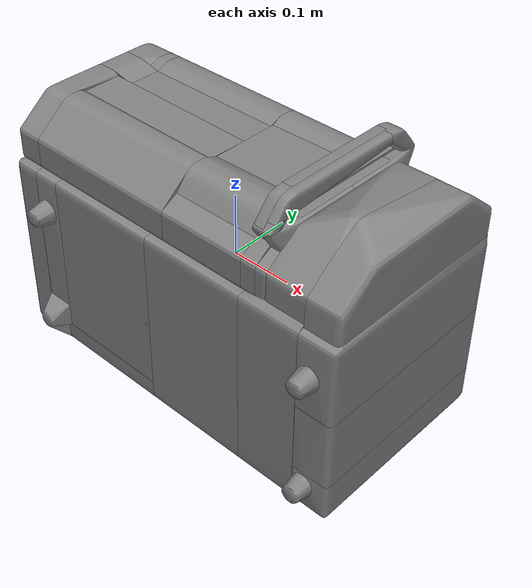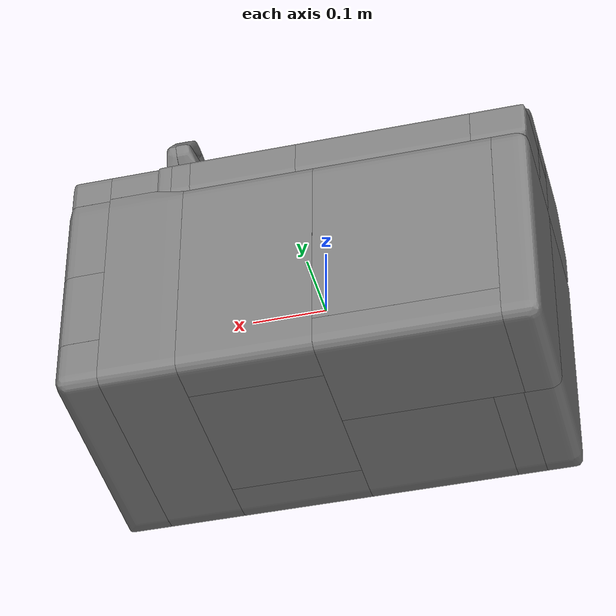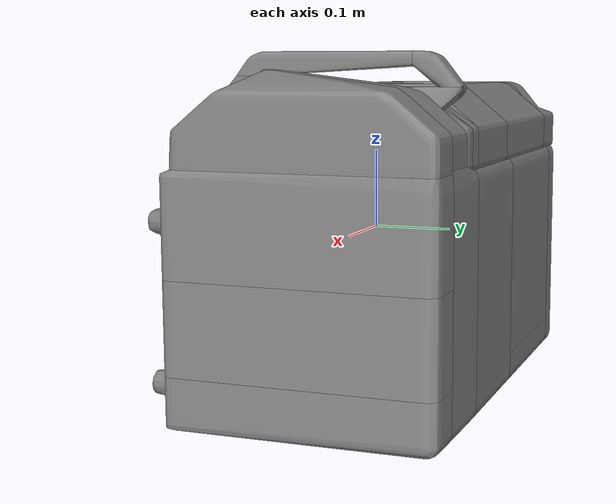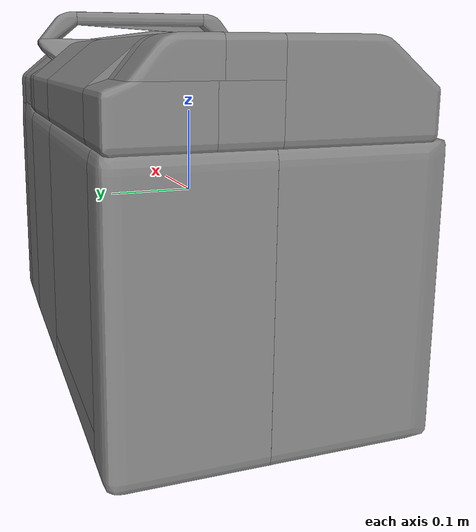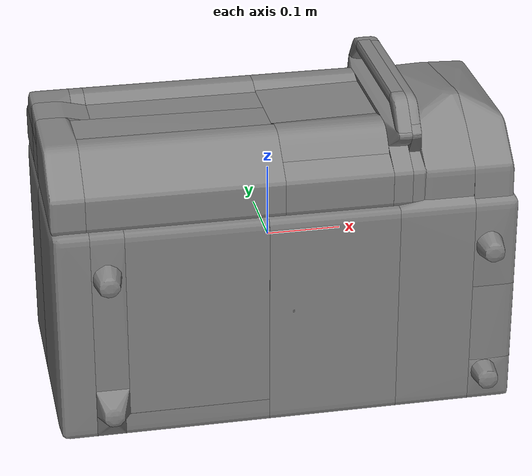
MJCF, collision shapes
<mujoco model="Microwave_1">
  <compiler autolimits="true" boundmass="0.01" angle="radian"/>
  <default>
    <default class="/">
      <default class="__VISUAL_MJT__">
        <geom contype="0" conaffinity="0" group="0"/>
      </default>
      <default class="__STRUCTURAL_MJT__">
        <geom contype="8" conaffinity="7" group="4" friction="0.90000000000000002 0.90000000000000002 0.001" solref="0.025000000000000001 1" solimp="0.998 0.998 0.001"/>
      </default>
      <default class="__DYNAMIC_MJT__">
        <geom contype="1" conaffinity="15" group="4" friction="0.90000000000000002 0.90000000000000002 0.001" solref="0.025000000000000001 1" solimp="0.998 0.998 0.001"/>
      </default>
    </default>
  </default>
  <asset>
    <texture name="Microwave_Window1_Off_Mat" type="2d" file="Microwave_Window_AlbedoTransparency.png"/>
    <material name="material_Microwave_Window1_Off_Mat" class="/" texture="Microwave_Window1_Off_Mat" specular="0.5" shininess="0.5" rgba="1 1 1 1"/>
    <material name="material_Microwave_Plate1_Mat" class="/" specular="0.5" shininess="0.5" rgba="0.30303849999999999 0.34723480000000001 0.43382349999999997 1"/>
    <texture name="Microwave_Metal_Mat" type="2d" file="BrushedIron_AlbedoTransparency.png"/>
    <material name="material_Microwave_Metal_Mat" class="/" texture="Microwave_Metal_Mat" specular="0.5" shininess="0.5" rgba="1 1 1 1"/>
    <texture name="Microwave_Primary1_Mat" type="2d" file="HammeredMetal_AlbedoTransparency.png"/>
    <material name="material_Microwave_Primary1_Mat" class="/" texture="Microwave_Primary1_Mat" specular="0.5" shininess="0.5" rgba="0.56571709999999997 0.56617649999999997 0.55785039999999997 1"/>
    <mesh name="Microwave_1_doormesh_1_0" class="/" file="Microwave_1_doormesh_1/Microwave_1_doormesh_1_0.obj" scale="1 1 1"/>
    <mesh name="Microwave_1_doormesh_1_1" class="/" file="Microwave_1_doormesh_1/Microwave_1_doormesh_1_1.obj" scale="1 1 1"/>
    <mesh name="Microwave_1_doormesh_1_2" class="/" file="Microwave_1_doormesh_1/Microwave_1_doormesh_1_2.obj" scale="1 1 1"/>
    <mesh name="Microwave_1_doormesh_1_3" class="/" file="Microwave_1_doormesh_1/Microwave_1_doormesh_1_3.obj" scale="1 1 1"/>
    <mesh name="Microwave_1_doormesh_1_4" class="/" file="Microwave_1_doormesh_1/Microwave_1_doormesh_1_4.obj" scale="1 1 1"/>
    <mesh name="Microwave_1_doormesh_1_5" class="/" file="Microwave_1_doormesh_1/Microwave_1_doormesh_1_5.obj" scale="1 1 1"/>
    <mesh name="Microwave_1_doormesh_1_6" class="/" file="Microwave_1_doormesh_1/Microwave_1_doormesh_1_6.obj" scale="1 1 1"/>
    <mesh name="Microwave_1_doormesh_1_7" class="/" file="Microwave_1_doormesh_1/Microwave_1_doormesh_1_7.obj" scale="1 1 1"/>
    <mesh name="Microwave_1_doormesh_1_collision_collision_18" class="/" file="Microwave_1_doormesh_1/Microwave_1_doormesh_1_collision_collision_18.obj"/>
    <mesh name="Microwave_1_doormesh_1_collision_collision_24" class="/" file="Microwave_1_doormesh_1/Microwave_1_doormesh_1_collision_collision_24.obj"/>
    <mesh name="Microwave_1_doormesh_1_collision_collision_25" class="/" file="Microwave_1_doormesh_1/Microwave_1_doormesh_1_collision_collision_25.obj"/>
    <mesh name="Microwave_1_doormesh_1_collision_collision_19" class="/" file="Microwave_1_doormesh_1/Microwave_1_doormesh_1_collision_collision_19.obj"/>
    <mesh name="Microwave_1_doormesh_1_collision_collision_27" class="/" file="Microwave_1_doormesh_1/Microwave_1_doormesh_1_collision_collision_27.obj"/>
    <mesh name="Microwave_1_doormesh_1_collision_collision_26" class="/" file="Microwave_1_doormesh_1/Microwave_1_doormesh_1_collision_collision_26.obj"/>
    <mesh name="Microwave_1_doormesh_1_collision_collision_22" class="/" file="Microwave_1_doormesh_1/Microwave_1_doormesh_1_collision_collision_22.obj"/>
    <mesh name="Microwave_1_doormesh_1_collision_collision_23" class="/" file="Microwave_1_doormesh_1/Microwave_1_doormesh_1_collision_collision_23.obj"/>
    <mesh name="Microwave_1_doormesh_1_collision_collision_21" class="/" file="Microwave_1_doormesh_1/Microwave_1_doormesh_1_collision_collision_21.obj"/>
    <mesh name="Microwave_1_doormesh_1_collision_collision_20" class="/" file="Microwave_1_doormesh_1/Microwave_1_doormesh_1_collision_collision_20.obj"/>
    <mesh name="Microwave_1_doormesh_1_collision_collision_6" class="/" file="Microwave_1_doormesh_1/Microwave_1_doormesh_1_collision_collision_6.obj"/>
    <mesh name="Microwave_1_doormesh_1_collision_collision_7" class="/" file="Microwave_1_doormesh_1/Microwave_1_doormesh_1_collision_collision_7.obj"/>
    <mesh name="Microwave_1_doormesh_1_collision_collision_5" class="/" file="Microwave_1_doormesh_1/Microwave_1_doormesh_1_collision_collision_5.obj"/>
    <mesh name="Microwave_1_doormesh_1_collision_collision_4" class="/" file="Microwave_1_doormesh_1/Microwave_1_doormesh_1_collision_collision_4.obj"/>
    <mesh name="Microwave_1_doormesh_1_collision_collision_0" class="/" file="Microwave_1_doormesh_1/Microwave_1_doormesh_1_collision_collision_0.obj"/>
    <mesh name="Microwave_1_doormesh_1_collision_collision_1" class="/" file="Microwave_1_doormesh_1/Microwave_1_doormesh_1_collision_collision_1.obj"/>
    <mesh name="Microwave_1_doormesh_1_collision_collision_3" class="/" file="Microwave_1_doormesh_1/Microwave_1_doormesh_1_collision_collision_3.obj"/>
    <mesh name="Microwave_1_doormesh_1_collision_collision_2" class="/" file="Microwave_1_doormesh_1/Microwave_1_doormesh_1_collision_collision_2.obj"/>
    <mesh name="Microwave_1_doormesh_1_collision_collision_9" class="/" file="Microwave_1_doormesh_1/Microwave_1_doormesh_1_collision_collision_9.obj"/>
    <mesh name="Microwave_1_doormesh_1_collision_collision_8" class="/" file="Microwave_1_doormesh_1/Microwave_1_doormesh_1_collision_collision_8.obj"/>
    <mesh name="Microwave_1_doormesh_1_collision_collision_11" class="/" file="Microwave_1_doormesh_1/Microwave_1_doormesh_1_collision_collision_11.obj"/>
    <mesh name="Microwave_1_doormesh_1_collision_collision_10" class="/" file="Microwave_1_doormesh_1/Microwave_1_doormesh_1_collision_collision_10.obj"/>
    <mesh name="Microwave_1_doormesh_1_collision_collision_12" class="/" file="Microwave_1_doormesh_1/Microwave_1_doormesh_1_collision_collision_12.obj"/>
    <mesh name="Microwave_1_doormesh_1_collision_collision_13" class="/" file="Microwave_1_doormesh_1/Microwave_1_doormesh_1_collision_collision_13.obj"/>
    <mesh name="Microwave_1_doormesh_1_collision_collision_17" class="/" file="Microwave_1_doormesh_1/Microwave_1_doormesh_1_collision_collision_17.obj"/>
    <mesh name="Microwave_1_doormesh_1_collision_collision_16" class="/" file="Microwave_1_doormesh_1/Microwave_1_doormesh_1_collision_collision_16.obj"/>
    <mesh name="Microwave_1_doormesh_1_collision_collision_14" class="/" file="Microwave_1_doormesh_1/Microwave_1_doormesh_1_collision_collision_14.obj"/>
    <mesh name="Microwave_1_doormesh_1_collision_collision_15" class="/" file="Microwave_1_doormesh_1/Microwave_1_doormesh_1_collision_collision_15.obj"/>
    <material name="material_Microwave_Readout2B_Off_Mat" class="/" specular="0.5" shininess="0.5" rgba="0 0 0 1"/>
    <texture name="Microwave_Decal_Mat" type="2d" file="Microwave_Decal_AlbedoTransparency.png"/>
    <material name="material_Microwave_Decal_Mat" class="/" texture="Microwave_Decal_Mat" specular="0.5" shininess="0.5" rgba="1 1 1 1"/>
    <material name="material_Microwave_Interior2_Mat" class="/" specular="0.5" shininess="0.5" rgba="0.60294119999999995 0.60294119999999995 0.60294119999999995 1"/>
    <material name="material_Microwave_Secondary1_Mat" class="/" specular="0.5" shininess="0.5" rgba="0.36029410000000001 0.36029410000000001 0.36029410000000001 1"/>
    <mesh name="Microwave_1_bodymesh_0_0" class="/" file="Microwave_1_bodymesh_0/Microwave_1_bodymesh_0_0.obj" scale="1 1 1"/>
    <mesh name="Microwave_1_bodymesh_0_1" class="/" file="Microwave_1_bodymesh_0/Microwave_1_bodymesh_0_1.obj" scale="1 1 1"/>
    <mesh name="Microwave_1_bodymesh_0_2" class="/" file="Microwave_1_bodymesh_0/Microwave_1_bodymesh_0_2.obj" scale="1 1 1"/>
    <mesh name="Microwave_1_bodymesh_0_3" class="/" file="Microwave_1_bodymesh_0/Microwave_1_bodymesh_0_3.obj" scale="1 1 1"/>
    <mesh name="Microwave_1_bodymesh_0_4" class="/" file="Microwave_1_bodymesh_0/Microwave_1_bodymesh_0_4.obj" scale="1 1 1"/>
    <mesh name="Microwave_1_bodymesh_0_5" class="/" file="Microwave_1_bodymesh_0/Microwave_1_bodymesh_0_5.obj" scale="1 1 1"/>
    <mesh name="Microwave_1_bodymesh_0_6" class="/" file="Microwave_1_bodymesh_0/Microwave_1_bodymesh_0_6.obj" scale="1 1 1"/>
    <mesh name="Microwave_1_bodymesh_0_collision_collision_12" class="/" file="Microwave_1_bodymesh_0/Microwave_1_bodymesh_0_collision_collision_12.obj"/>
    <mesh name="Microwave_1_bodymesh_0_collision_collision_13" class="/" file="Microwave_1_bodymesh_0/Microwave_1_bodymesh_0_collision_collision_13.obj"/>
    <mesh name="Microwave_1_bodymesh_0_collision_collision_11" class="/" file="Microwave_1_bodymesh_0/Microwave_1_bodymesh_0_collision_collision_11.obj"/>
    <mesh name="Microwave_1_bodymesh_0_collision_collision_10" class="/" file="Microwave_1_bodymesh_0/Microwave_1_bodymesh_0_collision_collision_10.obj"/>
    <mesh name="Microwave_1_bodymesh_0_collision_collision_14" class="/" file="Microwave_1_bodymesh_0/Microwave_1_bodymesh_0_collision_collision_14.obj"/>
    <mesh name="Microwave_1_bodymesh_0_collision_collision_15" class="/" file="Microwave_1_bodymesh_0/Microwave_1_bodymesh_0_collision_collision_15.obj"/>
    <mesh name="Microwave_1_bodymesh_0_collision_collision_17" class="/" file="Microwave_1_bodymesh_0/Microwave_1_bodymesh_0_collision_collision_17.obj"/>
    <mesh name="Microwave_1_bodymesh_0_collision_collision_8" class="/" file="Microwave_1_bodymesh_0/Microwave_1_bodymesh_0_collision_collision_8.obj"/>
    <mesh name="Microwave_1_bodymesh_0_collision_collision_9" class="/" file="Microwave_1_bodymesh_0/Microwave_1_bodymesh_0_collision_collision_9.obj"/>
    <mesh name="Microwave_1_bodymesh_0_collision_collision_16" class="/" file="Microwave_1_bodymesh_0/Microwave_1_bodymesh_0_collision_collision_16.obj"/>
    <mesh name="Microwave_1_bodymesh_0_collision_collision_4" class="/" file="Microwave_1_bodymesh_0/Microwave_1_bodymesh_0_collision_collision_4.obj"/>
    <mesh name="Microwave_1_bodymesh_0_collision_collision_5" class="/" file="Microwave_1_bodymesh_0/Microwave_1_bodymesh_0_collision_collision_5.obj"/>
    <mesh name="Microwave_1_bodymesh_0_collision_collision_18" class="/" file="Microwave_1_bodymesh_0/Microwave_1_bodymesh_0_collision_collision_18.obj"/>
    <mesh name="Microwave_1_bodymesh_0_collision_collision_7" class="/" file="Microwave_1_bodymesh_0/Microwave_1_bodymesh_0_collision_collision_7.obj"/>
    <mesh name="Microwave_1_bodymesh_0_collision_collision_6" class="/" file="Microwave_1_bodymesh_0/Microwave_1_bodymesh_0_collision_collision_6.obj"/>
    <mesh name="Microwave_1_bodymesh_0_collision_collision_19" class="/" file="Microwave_1_bodymesh_0/Microwave_1_bodymesh_0_collision_collision_19.obj"/>
    <mesh name="Microwave_1_bodymesh_0_collision_collision_21" class="/" file="Microwave_1_bodymesh_0/Microwave_1_bodymesh_0_collision_collision_21.obj"/>
    <mesh name="Microwave_1_bodymesh_0_collision_collision_2" class="/" file="Microwave_1_bodymesh_0/Microwave_1_bodymesh_0_collision_collision_2.obj"/>
    <mesh name="Microwave_1_bodymesh_0_collision_collision_3" class="/" file="Microwave_1_bodymesh_0/Microwave_1_bodymesh_0_collision_collision_3.obj"/>
    <mesh name="Microwave_1_bodymesh_0_collision_collision_20" class="/" file="Microwave_1_bodymesh_0/Microwave_1_bodymesh_0_collision_collision_20.obj"/>
    <mesh name="Microwave_1_bodymesh_0_collision_collision_1" class="/" file="Microwave_1_bodymesh_0/Microwave_1_bodymesh_0_collision_collision_1.obj"/>
    <mesh name="Microwave_1_bodymesh_0_collision_collision_0" class="/" file="Microwave_1_bodymesh_0/Microwave_1_bodymesh_0_collision_collision_0.obj"/>
  </asset>
  <worldbody>
    <body name="Microwave_1">
      <joint name="Microwave_1_free" class="/" type="free" pos="0 0 0" axis="0 0 1" stiffness="0" range="0 0" armature="0" damping="0.10000000000000001" frictionloss="0"/>
      <body name="Microwave_1_doormesh_1" pos="-0.29202829999999996 0.028091399999999989 0.092424199999999998" quat="1 0 0 0">
        <geom name="Microwave_1_doormesh_1_0" class="__VISUAL_MJT__" type="mesh" material="material_Microwave_Window1_Off_Mat" shellinertia="false" mesh="Microwave_1_doormesh_1_0"/>
        <geom name="Microwave_1_doormesh_1_1" class="__VISUAL_MJT__" type="mesh" material="material_Microwave_Plate1_Mat" shellinertia="true" mesh="Microwave_1_doormesh_1_1"/>
        <geom name="Microwave_1_doormesh_1_2" class="__VISUAL_MJT__" type="mesh" material="material_Microwave_Plate1_Mat" shellinertia="true" mesh="Microwave_1_doormesh_1_2"/>
        <geom name="Microwave_1_doormesh_1_3" class="__VISUAL_MJT__" type="mesh" material="material_Microwave_Plate1_Mat" shellinertia="true" mesh="Microwave_1_doormesh_1_3"/>
        <geom name="Microwave_1_doormesh_1_4" class="__VISUAL_MJT__" type="mesh" material="material_Microwave_Plate1_Mat" shellinertia="true" mesh="Microwave_1_doormesh_1_4"/>
        <geom name="Microwave_1_doormesh_1_5" class="__VISUAL_MJT__" type="mesh" material="material_Microwave_Metal_Mat" shellinertia="false" mesh="Microwave_1_doormesh_1_5"/>
        <geom name="Microwave_1_doormesh_1_6" class="__VISUAL_MJT__" type="mesh" material="material_Microwave_Primary1_Mat" shellinertia="false" mesh="Microwave_1_doormesh_1_6"/>
        <geom name="Microwave_1_doormesh_1_7" class="__VISUAL_MJT__" type="mesh" material="material_Microwave_Primary1_Mat" shellinertia="false" mesh="Microwave_1_doormesh_1_7"/>
        <geom name="Microwave_1_doormesh_1_collision_collision_18" class="__DYNAMIC_MJT__" type="mesh" mesh="Microwave_1_doormesh_1_collision_collision_18"/>
        <geom name="Microwave_1_doormesh_1_collision_collision_24" class="__DYNAMIC_MJT__" type="mesh" mesh="Microwave_1_doormesh_1_collision_collision_24"/>
        <geom name="Microwave_1_doormesh_1_collision_collision_25" class="__DYNAMIC_MJT__" type="mesh" mesh="Microwave_1_doormesh_1_collision_collision_25"/>
        <geom name="Microwave_1_doormesh_1_collision_collision_19" class="__DYNAMIC_MJT__" type="mesh" mesh="Microwave_1_doormesh_1_collision_collision_19"/>
        <geom name="Microwave_1_doormesh_1_collision_collision_27" class="__DYNAMIC_MJT__" type="mesh" mesh="Microwave_1_doormesh_1_collision_collision_27"/>
        <geom name="Microwave_1_doormesh_1_collision_collision_26" class="__DYNAMIC_MJT__" type="mesh" mesh="Microwave_1_doormesh_1_collision_collision_26"/>
        <geom name="Microwave_1_doormesh_1_collision_collision_22" class="__DYNAMIC_MJT__" type="mesh" mesh="Microwave_1_doormesh_1_collision_collision_22"/>
        <geom name="Microwave_1_doormesh_1_collision_collision_23" class="__DYNAMIC_MJT__" type="mesh" mesh="Microwave_1_doormesh_1_collision_collision_23"/>
        <geom name="Microwave_1_doormesh_1_collision_collision_21" class="__DYNAMIC_MJT__" type="mesh" mesh="Microwave_1_doormesh_1_collision_collision_21"/>
        <geom name="Microwave_1_doormesh_1_collision_collision_20" class="__DYNAMIC_MJT__" type="mesh" mesh="Microwave_1_doormesh_1_collision_collision_20"/>
        <geom name="Microwave_1_doormesh_1_collision_collision_6" class="__DYNAMIC_MJT__" type="mesh" mesh="Microwave_1_doormesh_1_collision_collision_6"/>
        <geom name="Microwave_1_doormesh_1_collision_collision_7" class="__DYNAMIC_MJT__" type="mesh" mesh="Microwave_1_doormesh_1_collision_collision_7"/>
        <geom name="Microwave_1_doormesh_1_collision_collision_5" class="__DYNAMIC_MJT__" type="mesh" mesh="Microwave_1_doormesh_1_collision_collision_5"/>
        <geom name="Microwave_1_doormesh_1_collision_collision_4" class="__DYNAMIC_MJT__" type="mesh" mesh="Microwave_1_doormesh_1_collision_collision_4"/>
        <geom name="Microwave_1_doormesh_1_collision_collision_0" class="__DYNAMIC_MJT__" type="mesh" mesh="Microwave_1_doormesh_1_collision_collision_0"/>
        <geom name="Microwave_1_doormesh_1_collision_collision_1" class="__DYNAMIC_MJT__" type="mesh" mesh="Microwave_1_doormesh_1_collision_collision_1"/>
        <geom name="Microwave_1_doormesh_1_collision_collision_3" class="__DYNAMIC_MJT__" type="mesh" mesh="Microwave_1_doormesh_1_collision_collision_3"/>
        <geom name="Microwave_1_doormesh_1_collision_collision_2" class="__DYNAMIC_MJT__" type="mesh" mesh="Microwave_1_doormesh_1_collision_collision_2"/>
        <geom name="Microwave_1_doormesh_1_collision_collision_9" class="__DYNAMIC_MJT__" type="mesh" mesh="Microwave_1_doormesh_1_collision_collision_9"/>
        <geom name="Microwave_1_doormesh_1_collision_collision_8" class="__DYNAMIC_MJT__" type="mesh" mesh="Microwave_1_doormesh_1_collision_collision_8"/>
        <geom name="Microwave_1_doormesh_1_collision_collision_11" class="__DYNAMIC_MJT__" type="mesh" mesh="Microwave_1_doormesh_1_collision_collision_11"/>
        <geom name="Microwave_1_doormesh_1_collision_collision_10" class="__DYNAMIC_MJT__" type="mesh" mesh="Microwave_1_doormesh_1_collision_collision_10"/>
        <geom name="Microwave_1_doormesh_1_collision_collision_12" class="__DYNAMIC_MJT__" type="mesh" mesh="Microwave_1_doormesh_1_collision_collision_12"/>
        <geom name="Microwave_1_doormesh_1_collision_collision_13" class="__DYNAMIC_MJT__" type="mesh" mesh="Microwave_1_doormesh_1_collision_collision_13"/>
        <geom name="Microwave_1_doormesh_1_collision_collision_17" class="__DYNAMIC_MJT__" type="mesh" mesh="Microwave_1_doormesh_1_collision_collision_17"/>
        <geom name="Microwave_1_doormesh_1_collision_collision_16" class="__DYNAMIC_MJT__" type="mesh" mesh="Microwave_1_doormesh_1_collision_collision_16"/>
        <geom name="Microwave_1_doormesh_1_collision_collision_14" class="__DYNAMIC_MJT__" type="mesh" mesh="Microwave_1_doormesh_1_collision_collision_14"/>
        <geom name="Microwave_1_doormesh_1_collision_collision_15" class="__DYNAMIC_MJT__" type="mesh" mesh="Microwave_1_doormesh_1_collision_collision_15"/>
        <joint name="Microwave_1_joint" class="/" type="hinge" pos="0 0 0" axis="0 -1 0" stiffness="0" range="0 1.5700000000000001" armature="0" damping="0.10000000000000001" frictionloss="0"/>
      </body>
      <body name="Microwave_1_bodymesh_0" pos="-0.0001 -0.17676 -0.023740000000000001" quat="1 0 0 0">
        <geom name="Microwave_1_bodymesh_0_0" class="__VISUAL_MJT__" type="mesh" material="material_Microwave_Readout2B_Off_Mat" shellinertia="false" mesh="Microwave_1_bodymesh_0_0"/>
        <geom name="Microwave_1_bodymesh_0_1" class="__VISUAL_MJT__" type="mesh" material="material_Microwave_Decal_Mat" shellinertia="false" mesh="Microwave_1_bodymesh_0_1"/>
        <geom name="Microwave_1_bodymesh_0_2" class="__VISUAL_MJT__" type="mesh" material="material_Microwave_Interior2_Mat" shellinertia="false" mesh="Microwave_1_bodymesh_0_2"/>
        <geom name="Microwave_1_bodymesh_0_3" class="__VISUAL_MJT__" type="mesh" material="material_Microwave_Plate1_Mat" shellinertia="false" mesh="Microwave_1_bodymesh_0_3"/>
        <geom name="Microwave_1_bodymesh_0_4" class="__VISUAL_MJT__" type="mesh" material="material_Microwave_Metal_Mat" shellinertia="false" mesh="Microwave_1_bodymesh_0_4"/>
        <geom name="Microwave_1_bodymesh_0_5" class="__VISUAL_MJT__" type="mesh" material="material_Microwave_Secondary1_Mat" shellinertia="false" mesh="Microwave_1_bodymesh_0_5"/>
        <geom name="Microwave_1_bodymesh_0_6" class="__VISUAL_MJT__" type="mesh" material="material_Microwave_Primary1_Mat" shellinertia="false" mesh="Microwave_1_bodymesh_0_6"/>
        <geom name="Microwave_1_bodymesh_0_collision_collision_12" class="__DYNAMIC_MJT__" type="mesh" mesh="Microwave_1_bodymesh_0_collision_collision_12"/>
        <geom name="Microwave_1_bodymesh_0_collision_collision_13" class="__DYNAMIC_MJT__" type="mesh" mesh="Microwave_1_bodymesh_0_collision_collision_13"/>
        <geom name="Microwave_1_bodymesh_0_collision_collision_11" class="__DYNAMIC_MJT__" type="mesh" mesh="Microwave_1_bodymesh_0_collision_collision_11"/>
        <geom name="Microwave_1_bodymesh_0_collision_collision_10" class="__DYNAMIC_MJT__" type="mesh" mesh="Microwave_1_bodymesh_0_collision_collision_10"/>
        <geom name="Microwave_1_bodymesh_0_collision_collision_14" class="__DYNAMIC_MJT__" type="mesh" mesh="Microwave_1_bodymesh_0_collision_collision_14"/>
        <geom name="Microwave_1_bodymesh_0_collision_collision_15" class="__DYNAMIC_MJT__" type="mesh" mesh="Microwave_1_bodymesh_0_collision_collision_15"/>
        <geom name="Microwave_1_bodymesh_0_collision_collision_17" class="__DYNAMIC_MJT__" type="mesh" mesh="Microwave_1_bodymesh_0_collision_collision_17"/>
        <geom name="Microwave_1_bodymesh_0_collision_collision_8" class="__DYNAMIC_MJT__" type="mesh" mesh="Microwave_1_bodymesh_0_collision_collision_8"/>
        <geom name="Microwave_1_bodymesh_0_collision_collision_9" class="__DYNAMIC_MJT__" type="mesh" mesh="Microwave_1_bodymesh_0_collision_collision_9"/>
        <geom name="Microwave_1_bodymesh_0_collision_collision_16" class="__DYNAMIC_MJT__" type="mesh" mesh="Microwave_1_bodymesh_0_collision_collision_16"/>
        <geom name="Microwave_1_bodymesh_0_collision_collision_4" class="__DYNAMIC_MJT__" type="mesh" mesh="Microwave_1_bodymesh_0_collision_collision_4"/>
        <geom name="Microwave_1_bodymesh_0_collision_collision_5" class="__DYNAMIC_MJT__" type="mesh" mesh="Microwave_1_bodymesh_0_collision_collision_5"/>
        <geom name="Microwave_1_bodymesh_0_collision_collision_18" class="__DYNAMIC_MJT__" type="mesh" mesh="Microwave_1_bodymesh_0_collision_collision_18"/>
        <geom name="Microwave_1_bodymesh_0_collision_collision_7" class="__DYNAMIC_MJT__" type="mesh" mesh="Microwave_1_bodymesh_0_collision_collision_7"/>
        <geom name="Microwave_1_bodymesh_0_collision_collision_6" class="__DYNAMIC_MJT__" type="mesh" mesh="Microwave_1_bodymesh_0_collision_collision_6"/>
        <geom name="Microwave_1_bodymesh_0_collision_collision_19" class="__DYNAMIC_MJT__" type="mesh" mesh="Microwave_1_bodymesh_0_collision_collision_19"/>
        <geom name="Microwave_1_bodymesh_0_collision_collision_21" class="__DYNAMIC_MJT__" type="mesh" mesh="Microwave_1_bodymesh_0_collision_collision_21"/>
        <geom name="Microwave_1_bodymesh_0_collision_collision_2" class="__DYNAMIC_MJT__" type="mesh" mesh="Microwave_1_bodymesh_0_collision_collision_2"/>
        <geom name="Microwave_1_bodymesh_0_collision_collision_3" class="__DYNAMIC_MJT__" type="mesh" mesh="Microwave_1_bodymesh_0_collision_collision_3"/>
        <geom name="Microwave_1_bodymesh_0_collision_collision_20" class="__DYNAMIC_MJT__" type="mesh" mesh="Microwave_1_bodymesh_0_collision_collision_20"/>
        <geom name="Microwave_1_bodymesh_0_collision_collision_1" class="__DYNAMIC_MJT__" type="mesh" mesh="Microwave_1_bodymesh_0_collision_collision_1"/>
        <geom name="Microwave_1_bodymesh_0_collision_collision_0" class="__DYNAMIC_MJT__" type="mesh" mesh="Microwave_1_bodymesh_0_collision_collision_0"/>
      </body>
    </body>
  </worldbody>
  <contact>
    <exclude name="//unnamed_contact_0" body1="Microwave_1" body2="Microwave_1_doormesh_1"/>
  </contact>
</mujoco>
